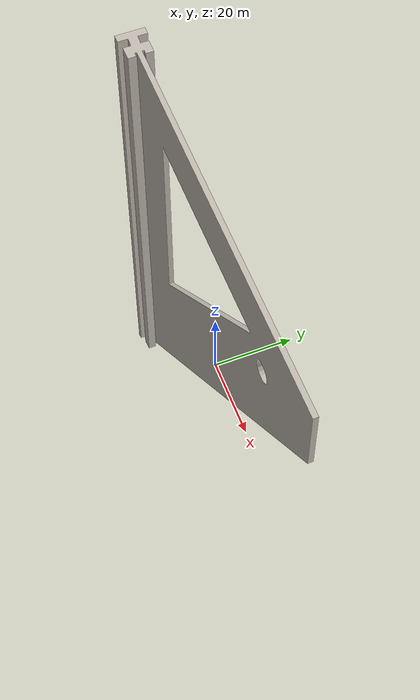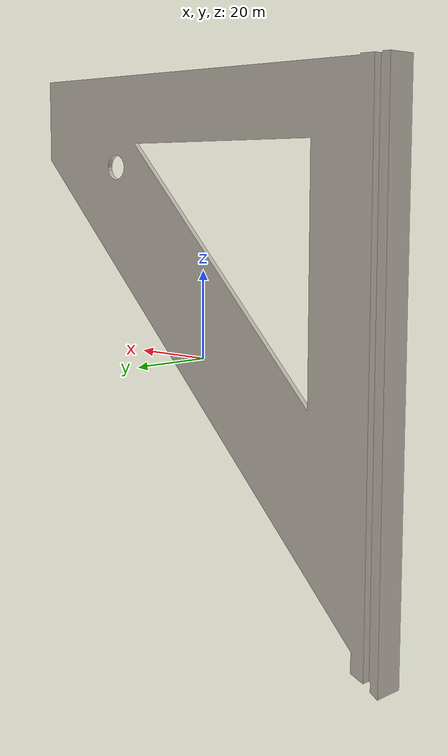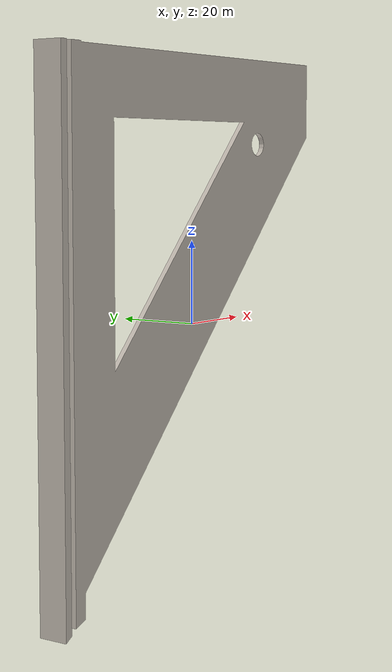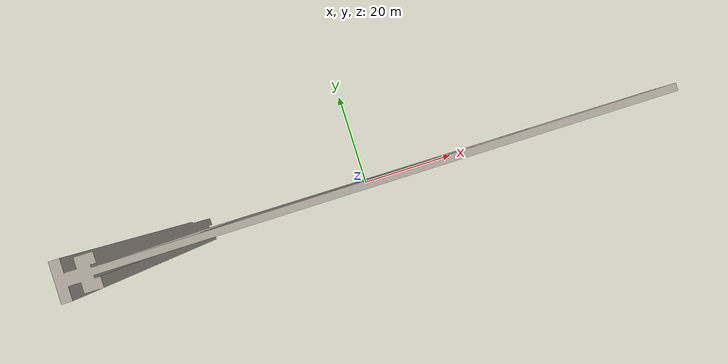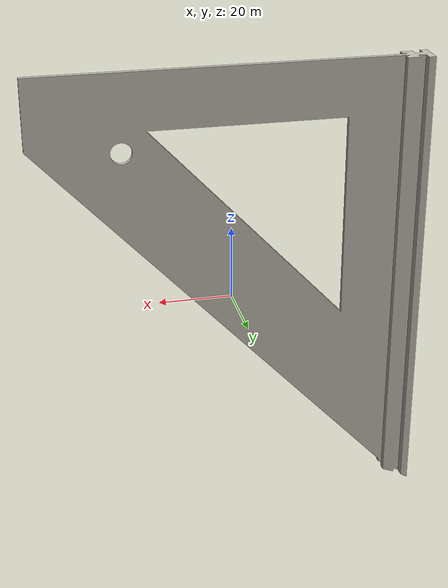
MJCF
<?xml version="1.0" encoding="utf-8"?>
<mujoco model="Triangle ruler">
  <default>
    <default class="visual">
      <geom group="2" type="mesh" contype="0" conaffinity="0"/>
    </default>
    <default class="collision">
      <geom group="3" type="mesh"/>
    </default>
  </default>
  <asset>
    <texture type="2d" name="Triangle ruler_BaseColor" file="Triangle ruler/Triangle ruler_BaseColor.png"/>
    <material name="material_0" texture="Triangle ruler_BaseColor" specular="1.0" shininess="0.5"/>
    <mesh file="Triangle ruler/Triangle ruler.obj" name="Triangle ruler"/>
    <mesh file="Triangle ruler/Triangle ruler_collision_0.obj" name="Triangle ruler_collision_0"/>
    <mesh file="Triangle ruler/Triangle ruler_collision_1.obj" name="Triangle ruler_collision_1"/>
    <mesh file="Triangle ruler/Triangle ruler_collision_2.obj" name="Triangle ruler_collision_2"/>
    <mesh file="Triangle ruler/Triangle ruler_collision_3.obj" name="Triangle ruler_collision_3"/>
    <mesh file="Triangle ruler/Triangle ruler_collision_4.obj" name="Triangle ruler_collision_4"/>
  </asset>
  <worldbody>
    <body name="Triangle ruler">
      <inertial mass="0.1" diaginertia="0.001 0.001 0.001" pos="0 0 0"/>
      <geom material="material_0" mesh="Triangle ruler" class="visual"/>
      <geom mesh="Triangle ruler_collision_0" rgba="0.1996231142182744 0.9282286666960565 0.10523647610756903 1" class="collision"/>
      <geom mesh="Triangle ruler_collision_1" rgba="0.6180030976545848 0.8567956330464892 0.8577548730268315 1" class="collision"/>
      <geom mesh="Triangle ruler_collision_2" rgba="0.7936309542106891 0.7708066947658468 0.8883000353826742 1" class="collision"/>
      <geom mesh="Triangle ruler_collision_3" rgba="0.5180966663256934 0.44249209479133833 0.9627140158142375 1" class="collision"/>
      <geom mesh="Triangle ruler_collision_4" rgba="0.9803073200862868 0.5536879544666584 0.31709677394254265 1" class="collision"/>
    </body>
  </worldbody>
</mujoco>
